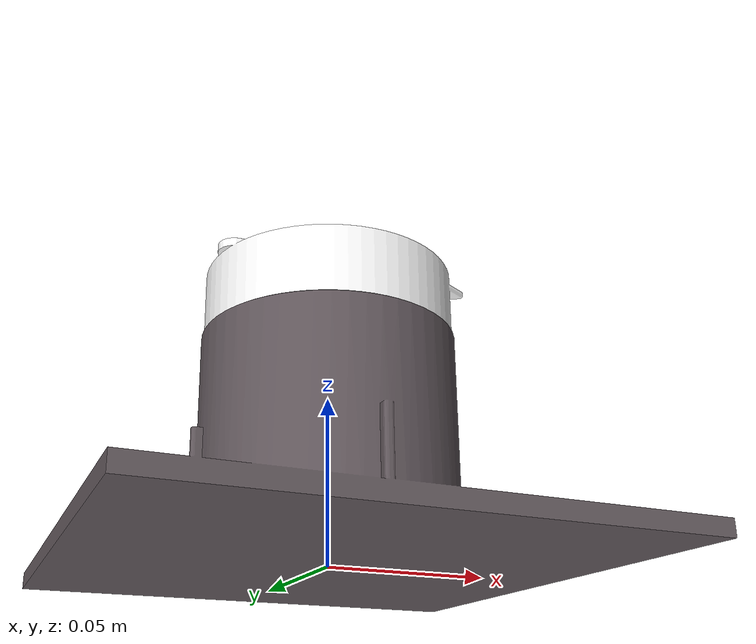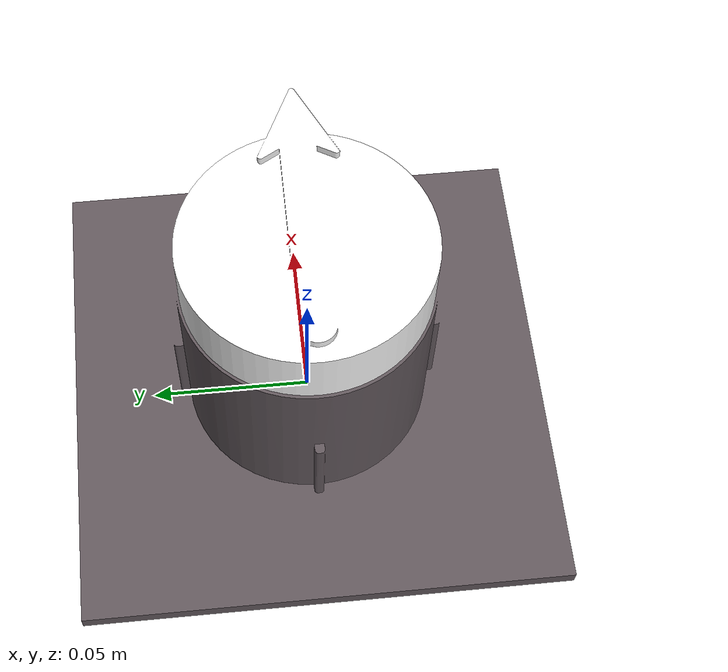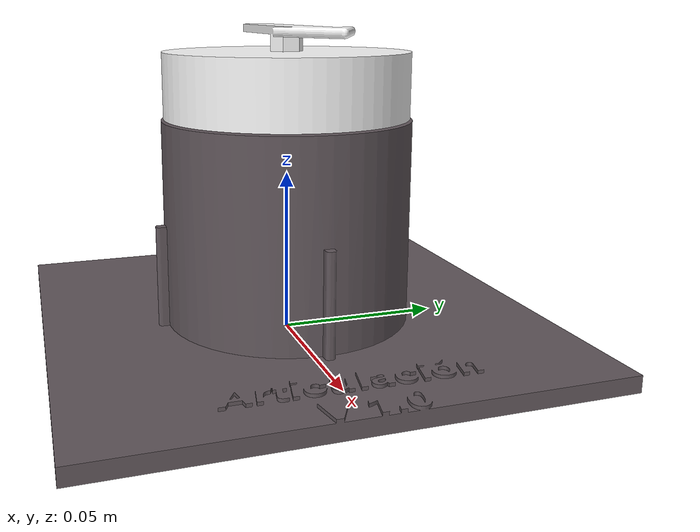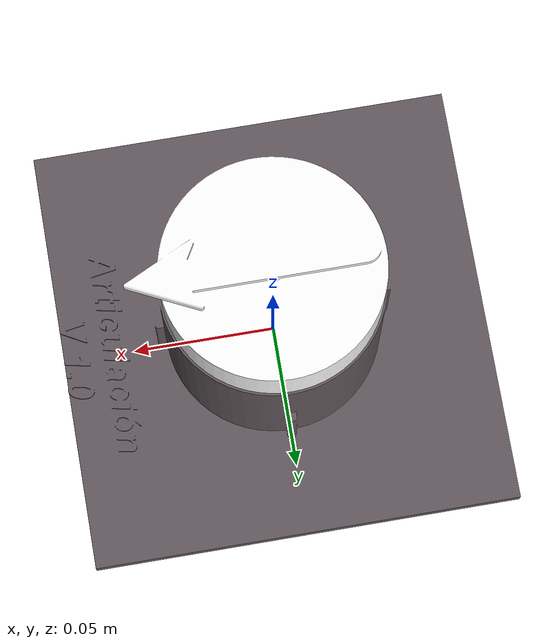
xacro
<?xml version="1.0" ?>
<robot name="articulation" xmlns:xacro="http://www.ros.org/wiki/xacro">

<xacro:include filename="$(find articulation_description)/urdf/materials.xacro" />
<xacro:include filename="$(find articulation_description)/urdf/articulation.trans" />
<xacro:include filename="$(find articulation_description)/urdf/articulation.gazebo" />
<link name="base_link">
  <inertial>
    <origin xyz="-1.2272860191231992e-05 6.930542941604452e-07 0.02514924726159968" rpy="0 0 0"/>
    <mass value="0.3737549922804392"/>
    <inertia ixx="0.000618" iyy="0.000619" izz="0.000735" ixy="-0.0" iyz="0.0" ixz="-0.0"/>
  </inertial>
  <visual>
    <origin xyz="0 0 0" rpy="0 0 0"/>
    <geometry>
      <mesh filename="package://articulation_description/meshes/base_link.stl" scale="0.001 0.001 0.001"/>
    </geometry>
    <material name="gray"/>
  </visual>
  <collision>
    <origin xyz="0 0 0" rpy="0 0 0"/>
    <geometry>
      <mesh filename="package://articulation_description/meshes/base_link.stl" scale="0.001 0.001 0.001"/>
    </geometry>
  </collision>
</link>

<link name="Link_0_v4_1">
  <inertial>
    <origin xyz="0.0004165585996347492 -1.2682253631437242e-05 0.0014097138461642983" rpy="0 0 0"/>
    <mass value="0.05203854090410597"/>
    <inertia ixx="2.4e-05" iyy="2.6e-05" izz="4.6e-05" ixy="0.0" iyz="-0.0" ixz="-0.0"/>
  </inertial>
  <visual>
    <origin xyz="-0.0 -0.0 -0.08" rpy="0 0 0"/>
    <geometry>
      <mesh filename="package://articulation_description/meshes/Link_0_v4_1.stl" scale="0.001 0.001 0.001"/>
    </geometry>
    <material name="white"/>
  </visual>
  <collision>
    <origin xyz="-0.0 -0.0 -0.08" rpy="0 0 0"/>
    <geometry>
      <mesh filename="package://articulation_description/meshes/Link_0_v4_1.stl" scale="0.001 0.001 0.001"/>
    </geometry>
  </collision>
</link>

<joint name="Revolute_2" type="revolute">
  <origin xyz="0.0 0.0 0.08" rpy="0 0 0"/>
  <parent link="base_link"/>
  <child link="Link_0_v4_1"/>
  <axis xyz="-0.0 -0.0 1.0"/>
  <limit upper="6.283185" lower="0.0" effort="100" velocity="100"/>
</joint>

</robot>

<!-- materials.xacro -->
<robot name="articulation" xmlns:xacro="http://www.ros.org/wiki/xacro" >

<material name="silver">
  <color rgba="0.700 0.700 0.700 1.000"/>
</material>

<material name="white">
  <color rgba="1.000 1.000 1.000 1.000"/>
</material>

<material name="gray">
  <color rgba="0.384 0.345 0.364 1.000"/>
</material>

</robot>

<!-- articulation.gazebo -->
<robot name="articulation" xmlns:xacro="http://www.ros.org/wiki/xacro" >

<xacro:property name="body_color" value="Gazebo/Gray" />
<xacro:property name="red_color" value="Gazebo/Silver" />

<gazebo>
  <plugin name="control" filename="libgazebo_ros_control.so"/>
</gazebo>
<gazebo reference="base_link">
  <material>${body_color}</material>
  <mu1>0.2</mu1>
  <mu2>0.2</mu2>
  <selfCollide>true</selfCollide>
  <gravity>true</gravity>
</gazebo>

<gazebo reference="Link_0_v4_1">
  <material>${red_color}</material>
  <mu1>0.2</mu1>
  <mu2>0.2</mu2>
  <selfCollide>true</selfCollide>
</gazebo>

</robot>
